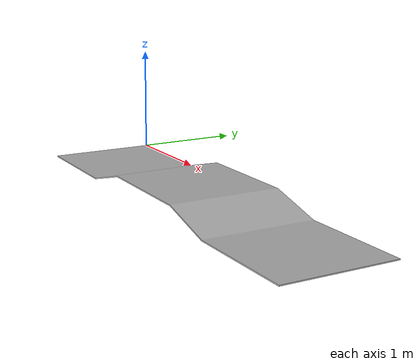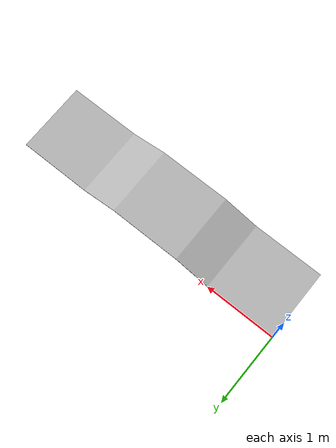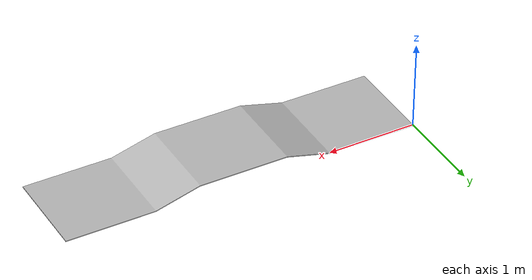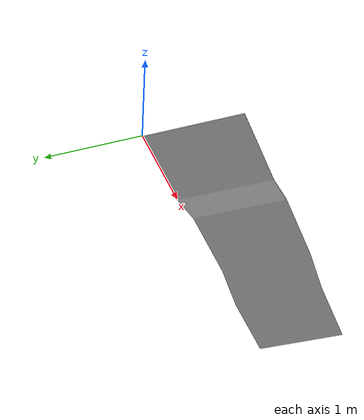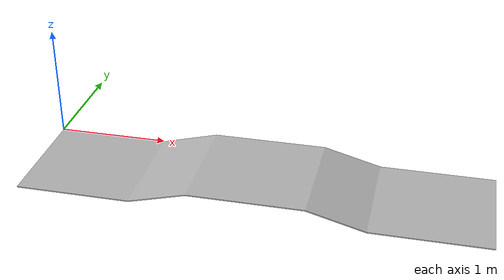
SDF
<sdf version='1.6'>
  <model name='slope_way'>

    <joint name="fixed to ground" type="fixed">
      <parent>world</parent>
      <child>slope_way</child>
    </joint>

    <link name='slope_way'>
      <pose frame=''>0 0 0 0 -0 0</pose>
      <inertial>
        <pose frame=''>2 -0.5 0.045343 0 -0 0</pose>
        <mass>40.353</mass>
        <inertia>
          <ixx>3.502</ixx>
          <ixy>2.2374e-15</ixy>
          <ixz>-1.23092e-15</ixz>
          <iyy>53.678</iyy>
          <iyz>3.05352e-16</iyz>
          <izz>56.9015</izz>
        </inertia>
      </inertial>
      <collision name='slope_way_collision'>
        <pose frame=''>0 0 0 1.5708 -0 0</pose>
        <geometry>
          <mesh>
            <scale>1 1 1</scale>
            <uri>model://slope_way/meshes/slope_way.STL</uri>
          </mesh>
        </geometry>
      </collision>
      <visual name='slope_way_visual'>
        <pose frame=''>0 0 0 1.5708 -0 0</pose>
        <geometry>
          <mesh>
            <scale>1 1 1</scale>
            <uri>model://slope_way/meshes/slope_way.STL</uri>
          </mesh>
        </geometry>
      </visual>
    </link>
  </model>
</sdf>
